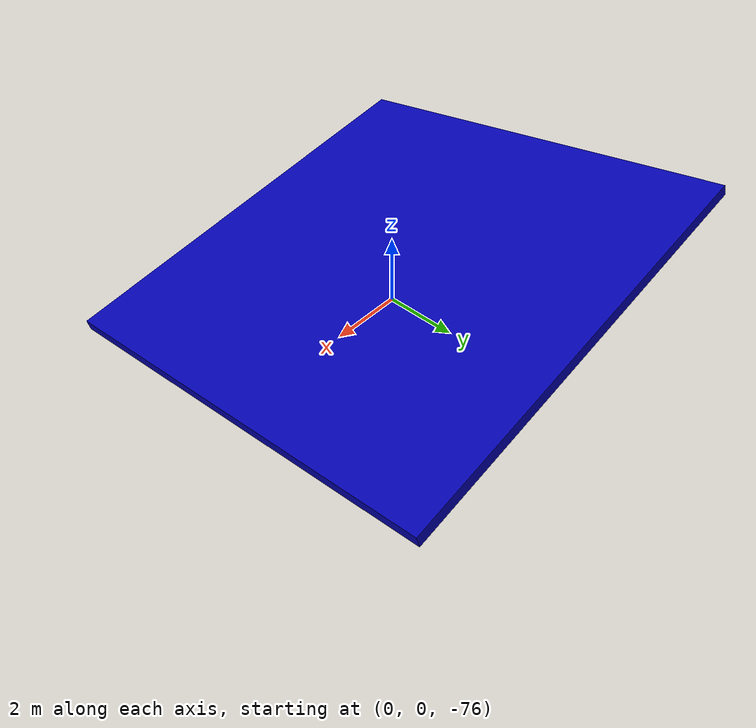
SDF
<sdf version="1.6">
 <world name="default">
  <light name="sun" type="directional">
   <pose>0 0 10 0 -0 0</pose>
   <diffuse>0.8 0.8 0.8 1</diffuse>
   <specular>0.2 0.2 0.2 1</specular>
   <attenuation>
    <range>1000</range>
    <constant>0.9</constant>
    <linear>0.01</linear>
    <quadratic>0.001</quadratic>
   </attenuation>
   <direction>-0.5 0.1 -0.9</direction>
  </light>
  <model name="ground_plane">
   <static>1</static>
   <link name="link">
    <collision name="collision">
     <geometry><plane><normal>0 0 1</normal><size>100 100</size></plane></geometry>
     <surface><friction><ode><mu>100</mu><mu2>50</mu2></ode></friction></surface>
    </collision>
    <visual name="visual">
     <cast_shadows>0</cast_shadows>
     <geometry><plane><normal>0 0 1</normal><size>100 100</size></plane></geometry>
     <material>
      <script><uri>file://media/materials/scripts/gazebo.material</uri><name>Gazebo/Grey</name></script>
     </material>
    </visual>
   </link>
  </model>
  <gravity>0 0 -9.8</gravity>
  <magnetic_field>6e-06 2.3e-05 -4.2e-05</magnetic_field>
  <atmosphere type="adiabatic"/>
  <physics name="default_physics" default="0" type="ode">
   <max_step_size>0.001</max_step_size>
   <real_time_factor>1</real_time_factor>
   <real_time_update_rate>1000</real_time_update_rate>
  </physics>
  <scene><ambient>0.4 0.4 0.4 1</ambient><background>0.7 0.7 0.7 1</background><shadows>1</shadows></scene>
  <audio><device>default</device></audio>
  <spherical_coordinates>
   <surface_model>EARTH_WGS84</surface_model>
   <latitude_deg>0</latitude_deg>
   <longitude_deg>0</longitude_deg>
   <elevation>0</elevation>
   <heading_deg>0</heading_deg>
  </spherical_coordinates>
  <model name="Blue_Plane">
   <link name="link">
    <inertial>
     <inertia><ixx>12030</ixx><ixy>0</ixy><ixz>0</ixz><iyy>12030</iyy><iyz>0</iyz><izz>24000</izz></inertia>
     <mass>1000</mass>
    </inertial>
    <visual name="visual">
     <geometry><mesh><scale>2 2 1</scale><uri>model://bluePlane/meshes/bluePlane.dae</uri></mesh></geometry>
     <material><shader type="vertex"><normal_map>__default__</normal_map></shader></material>
    </visual>
    <collision name="collision">
     <geometry><mesh><uri>model://bluePlane/meshes/bluePlane.dae</uri><scale>2 2 1</scale></mesh></geometry>
     <surface>
      <friction>
       <ode><mu>1</mu><mu2>1</mu2><fdir1>0 0 0</fdir1><slip1>0</slip1><slip2>0</slip2></ode>
       <torsional>
        <coefficient>1</coefficient>
        <patch_radius>0</patch_radius>
        <surface_radius>0</surface_radius>
        <use_patch_radius>1</use_patch_radius>
        <ode><slip>0</slip></ode>
       </torsional>
      </friction>
      <bounce><restitution_coefficient>0</restitution_coefficient><threshold>1e+06</threshold></bounce>
      <contact>
       <collide_without_contact>0</collide_without_contact>
       <collide_without_contact_bitmask>1</collide_without_contact_bitmask>
       <collide_bitmask>1</collide_bitmask>
       <ode>
        <soft_cfm>0</soft_cfm>
        <soft_erp>0.2</soft_erp>
        <kp>100e8</kp>
        <kd>0</kd>
        <max_vel>0.01</max_vel>
        <min_depth>0</min_depth>
       </ode>
       <bullet>
        <split_impulse>1</split_impulse>
        <split_impulse_penetration_threshold>-0.01</split_impulse_penetration_threshold>
        <soft_cfm>0</soft_cfm>
        <soft_erp>0.2</soft_erp>
        <kp>100e8</kp>
        <kd>0</kd>
       </bullet>
      </contact>
     </surface>
    </collision>
   </link>
   <static>0</static>
   <pose>-0.049645 0.064222 -74.6463 0.161015 0.160054 0.012757</pose>
  </model>
 </world>
</sdf>
